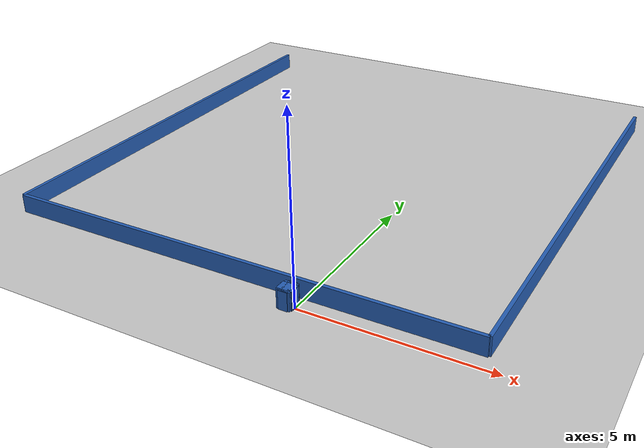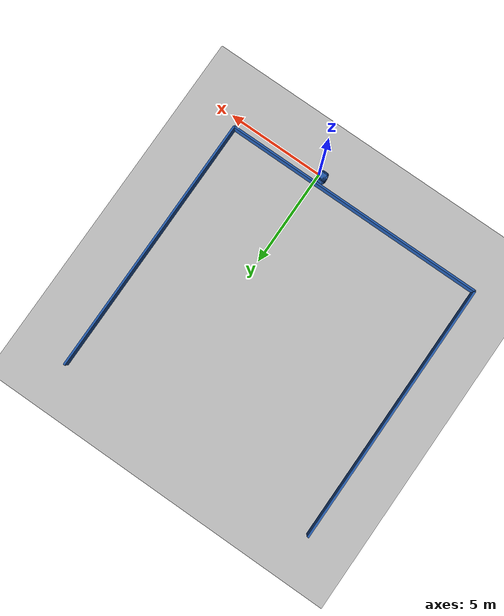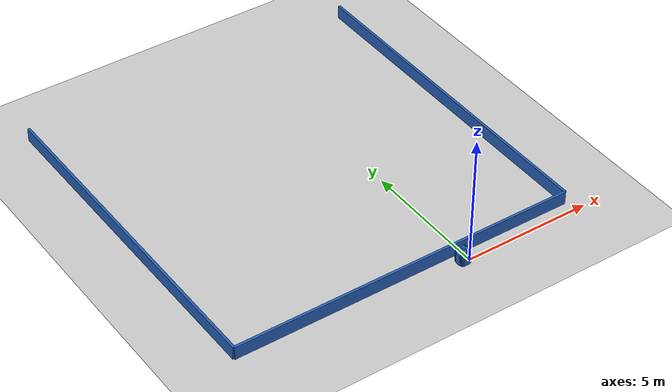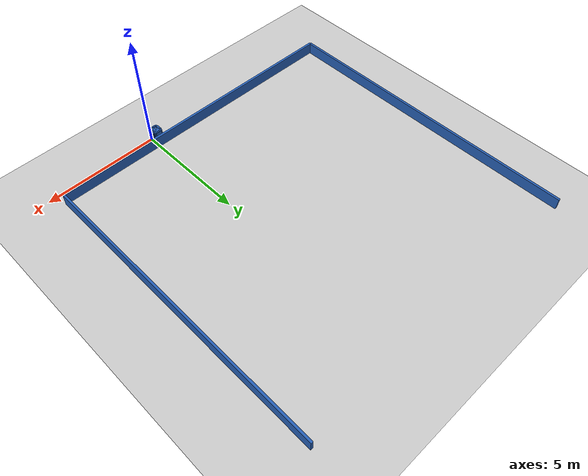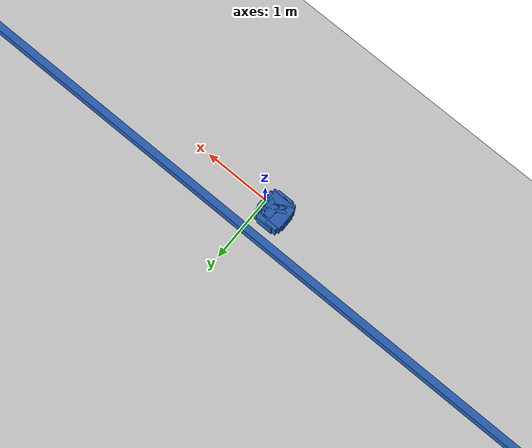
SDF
<?xml version="1.0" ?>
    <sdf version="1.5">
      <world name="default">
        <!-- A global light source -->
        <include>
          <uri>model://sun</uri>
        </include>
        <!-- A ground plane -->
        <include>
          <uri>model://ground_plane</uri>
        </include>

    <model name='libopen_space_final_T2B_77_83'>
      <static>1</static>
      <pose frame=''>-0.225000 0.075000 0.000000 0.000000 0.000000 0.000000</pose>
      <link name='link'>
        <inertial>
          <mass>1</mass>
          <inertia>
            <ixx>0.145833</ixx>
            <ixy>0</ixy>
            <ixz>0</ixz>
            <iyy>0.145833</iyy>
            <iyz>0</iyz>
            <izz>0.125</izz>
          </inertia>
        </inertial>
        <collision name='collision'>
          <geometry>
            <box>
              <size>0.41 0.30 1</size>
            </box>
          </geometry>
          <max_contacts>10</max_contacts>
          <surface>
            <contact>
              <ode/>
            </contact>
            <bounce/>
            <friction>
              <torsional>
                <ode/>
              </torsional>
              <ode/>
            </friction>
          </surface>
        </collision>
        <visual name='visual'>
          <geometry>
            <box>
              <size>0.41 0.30 1</size>
            </box>
          </geometry>
	    <material>
              <ambient>0.152000 0.379000 0.720000 1</ambient>
	      <diffuse>0.152000 0.379000 0.720000 1</diffuse>
          </material>
          <material>
            <script>
              <name>Gazebo/Grey</name>
              <uri>file://media/materials/scripts/gazebo.material</uri>
            </script>
          </material>
        </visual>
        <self_collide>0</self_collide>
        <kinematic>0</kinematic>
        <gravity>1</gravity>
      </link>
      <plugin name='libopen_space_final_T2B_77_83' filename='libopen_space_final_T2B_77_83.so'/>
    </model>

    <model name='libopen_space_final_T2B_83_61'>
      <static>1</static>
      <pose frame=''>-0.225000 0.075000 0.000000 0.000000 0.000000 0.000000</pose>
      <link name='link'>
        <inertial>
          <mass>1</mass>
          <inertia>
            <ixx>0.145833</ixx>
            <ixy>0</ixy>
            <ixz>0</ixz>
            <iyy>0.145833</iyy>
            <iyz>0</iyz>
            <izz>0.125</izz>
          </inertia>
        </inertial>
        <collision name='collision'>
          <geometry>
            <box>
              <size>0.36 0.43 1</size>
            </box>
          </geometry>
          <max_contacts>10</max_contacts>
          <surface>
            <contact>
              <ode/>
            </contact>
            <bounce/>
            <friction>
              <torsional>
                <ode/>
              </torsional>
              <ode/>
            </friction>
          </surface>
        </collision>
        <visual name='visual'>
          <geometry>
            <box>
              <size>0.36 0.43 1</size>
            </box>
          </geometry>
	    <material>
              <ambient>0.152000 0.379000 0.720000 1</ambient>
	      <diffuse>0.152000 0.379000 0.720000 1</diffuse>
          </material>
          <material>
            <script>
              <name>Gazebo/Grey</name>
              <uri>file://media/materials/scripts/gazebo.material</uri>
            </script>
          </material>
        </visual>
        <self_collide>0</self_collide>
        <kinematic>0</kinematic>
        <gravity>1</gravity>
      </link>
      <plugin name='libopen_space_final_T2B_83_61' filename='libopen_space_final_T2B_83_61.so'/>
    </model>

    <model name='libopen_space_final_T2B_80_26'>
      <static>1</static>
      <pose frame=''>-0.225000 0.075000 0.000000 0.000000 0.000000 0.000000</pose>
      <link name='link'>
        <inertial>
          <mass>1</mass>
          <inertia>
            <ixx>0.145833</ixx>
            <ixy>0</ixy>
            <ixz>0</ixz>
            <iyy>0.145833</iyy>
            <iyz>0</iyz>
            <izz>0.125</izz>
          </inertia>
        </inertial>
        <collision name='collision'>
          <geometry>
            <box>
              <size>0.44 0.21 1</size>
            </box>
          </geometry>
          <max_contacts>10</max_contacts>
          <surface>
            <contact>
              <ode/>
            </contact>
            <bounce/>
            <friction>
              <torsional>
                <ode/>
              </torsional>
              <ode/>
            </friction>
          </surface>
        </collision>
        <visual name='visual'>
          <geometry>
            <box>
              <size>0.44 0.21 1</size>
            </box>
          </geometry>
	    <material>
              <ambient>0.152000 0.379000 0.720000 1</ambient>
	      <diffuse>0.152000 0.379000 0.720000 1</diffuse>
          </material>
          <material>
            <script>
              <name>Gazebo/Grey</name>
              <uri>file://media/materials/scripts/gazebo.material</uri>
            </script>
          </material>
        </visual>
        <self_collide>0</self_collide>
        <kinematic>0</kinematic>
        <gravity>1</gravity>
      </link>
      <plugin name='libopen_space_final_T2B_80_26' filename='libopen_space_final_T2B_80_26.so'/>
    </model>

    <model name='libopen_space_final_T2B_77_65'>
      <static>1</static>
      <pose frame=''>-0.225000 0.075000 0.000000 0.000000 0.000000 0.000000</pose>
      <link name='link'>
        <inertial>
          <mass>1</mass>
          <inertia>
            <ixx>0.145833</ixx>
            <ixy>0</ixy>
            <ixz>0</ixz>
            <iyy>0.145833</iyy>
            <iyz>0</iyz>
            <izz>0.125</izz>
          </inertia>
        </inertial>
        <collision name='collision'>
          <geometry>
            <box>
              <size>0.41 0.33 1</size>
            </box>
          </geometry>
          <max_contacts>10</max_contacts>
          <surface>
            <contact>
              <ode/>
            </contact>
            <bounce/>
            <friction>
              <torsional>
                <ode/>
              </torsional>
              <ode/>
            </friction>
          </surface>
        </collision>
        <visual name='visual'>
          <geometry>
            <box>
              <size>0.41 0.33 1</size>
            </box>
          </geometry>
	    <material>
              <ambient>0.152000 0.379000 0.720000 1</ambient>
	      <diffuse>0.152000 0.379000 0.720000 1</diffuse>
          </material>
          <material>
            <script>
              <name>Gazebo/Grey</name>
              <uri>file://media/materials/scripts/gazebo.material</uri>
            </script>
          </material>
        </visual>
        <self_collide>0</self_collide>
        <kinematic>0</kinematic>
        <gravity>1</gravity>
      </link>
      <plugin name='libopen_space_final_T2B_77_65' filename='libopen_space_final_T2B_77_65.so'/>
    </model>

    <model name='libopen_space_final_T2B_112_54'>
      <static>1</static>
      <pose frame=''>-0.225000 0.075000 0.000000 0.000000 0.000000 0.000000</pose>
      <link name='link'>
        <inertial>
          <mass>1</mass>
          <inertia>
            <ixx>0.145833</ixx>
            <ixy>0</ixy>
            <ixz>0</ixz>
            <iyy>0.145833</iyy>
            <iyz>0</iyz>
            <izz>0.125</izz>
          </inertia>
        </inertial>
        <collision name='collision'>
          <geometry>
            <box>
              <size>0.18 0.18 1</size>
            </box>
          </geometry>
          <max_contacts>10</max_contacts>
          <surface>
            <contact>
              <ode/>
            </contact>
            <bounce/>
            <friction>
              <torsional>
                <ode/>
              </torsional>
              <ode/>
            </friction>
          </surface>
        </collision>
        <visual name='visual'>
          <geometry>
            <box>
              <size>0.18 0.18 1</size>
            </box>
          </geometry>
	    <material>
              <ambient>0.152000 0.379000 0.720000 1</ambient>
	      <diffuse>0.152000 0.379000 0.720000 1</diffuse>
          </material>
          <material>
            <script>
              <name>Gazebo/Grey</name>
              <uri>file://media/materials/scripts/gazebo.material</uri>
            </script>
          </material>
        </visual>
        <self_collide>0</self_collide>
        <kinematic>0</kinematic>
        <gravity>1</gravity>
      </link>
      <plugin name='libopen_space_final_T2B_112_54' filename='libopen_space_final_T2B_112_54.so'/>
    </model>

    <model name='libopen_space_final_T2B_105_38'>
      <static>1</static>
      <pose frame=''>-0.225000 0.075000 0.000000 0.000000 0.000000 0.000000</pose>
      <link name='link'>
        <inertial>
          <mass>1</mass>
          <inertia>
            <ixx>0.145833</ixx>
            <ixy>0</ixy>
            <ixz>0</ixz>
            <iyy>0.145833</iyy>
            <iyz>0</iyz>
            <izz>0.125</izz>
          </inertia>
        </inertial>
        <collision name='collision'>
          <geometry>
            <box>
              <size>0.18 0.24 1</size>
            </box>
          </geometry>
          <max_contacts>10</max_contacts>
          <surface>
            <contact>
              <ode/>
            </contact>
            <bounce/>
            <friction>
              <torsional>
                <ode/>
              </torsional>
              <ode/>
            </friction>
          </surface>
        </collision>
        <visual name='visual'>
          <geometry>
            <box>
              <size>0.18 0.24 1</size>
            </box>
          </geometry>
	    <material>
              <ambient>0.152000 0.379000 0.720000 1</ambient>
	      <diffuse>0.152000 0.379000 0.720000 1</diffuse>
          </material>
          <material>
            <script>
              <name>Gazebo/Grey</name>
              <uri>file://media/materials/scripts/gazebo.material</uri>
            </script>
          </material>
        </visual>
        <self_collide>0</self_collide>
        <kinematic>0</kinematic>
        <gravity>1</gravity>
      </link>
      <plugin name='libopen_space_final_T2B_105_38' filename='libopen_space_final_T2B_105_38.so'/>
    </model>

    <model name='libopen_space_final_T2B_105_94'>
      <static>1</static>
      <pose frame=''>-0.225000 0.075000 0.000000 0.000000 0.000000 0.000000</pose>
      <link name='link'>
        <inertial>
          <mass>1</mass>
          <inertia>
            <ixx>0.145833</ixx>
            <ixy>0</ixy>
            <ixz>0</ixz>
            <iyy>0.145833</iyy>
            <iyz>0</iyz>
            <izz>0.125</izz>
          </inertia>
        </inertial>
        <collision name='collision'>
          <geometry>
            <box>
              <size>0.11 0.40 1</size>
            </box>
          </geometry>
          <max_contacts>10</max_contacts>
          <surface>
            <contact>
              <ode/>
            </contact>
            <bounce/>
            <friction>
              <torsional>
                <ode/>
              </torsional>
              <ode/>
            </friction>
          </surface>
        </collision>
        <visual name='visual'>
          <geometry>
            <box>
              <size>0.11 0.40 1</size>
            </box>
          </geometry>
	    <material>
              <ambient>0.152000 0.379000 0.720000 1</ambient>
	      <diffuse>0.152000 0.379000 0.720000 1</diffuse>
          </material>
          <material>
            <script>
              <name>Gazebo/Grey</name>
              <uri>file://media/materials/scripts/gazebo.material</uri>
            </script>
          </material>
        </visual>
        <self_collide>0</self_collide>
        <kinematic>0</kinematic>
        <gravity>1</gravity>
      </link>
      <plugin name='libopen_space_final_T2B_105_94' filename='libopen_space_final_T2B_105_94.so'/>
    </model>

    <model name='libopen_space_final_T2B_90_7'>
      <static>1</static>
      <pose frame=''>-0.225000 0.075000 0.000000 0.000000 0.000000 0.000000</pose>
      <link name='link'>
        <inertial>
          <mass>1</mass>
          <inertia>
            <ixx>0.145833</ixx>
            <ixy>0</ixy>
            <ixz>0</ixz>
            <iyy>0.145833</iyy>
            <iyz>0</iyz>
            <izz>0.125</izz>
          </inertia>
        </inertial>
        <collision name='collision'>
          <geometry>
            <box>
              <size>0.29 0.30 1</size>
            </box>
          </geometry>
          <max_contacts>10</max_contacts>
          <surface>
            <contact>
              <ode/>
            </contact>
            <bounce/>
            <friction>
              <torsional>
                <ode/>
              </torsional>
              <ode/>
            </friction>
          </surface>
        </collision>
        <visual name='visual'>
          <geometry>
            <box>
              <size>0.29 0.30 1</size>
            </box>
          </geometry>
	    <material>
              <ambient>0.152000 0.379000 0.720000 1</ambient>
	      <diffuse>0.152000 0.379000 0.720000 1</diffuse>
          </material>
          <material>
            <script>
              <name>Gazebo/Grey</name>
              <uri>file://media/materials/scripts/gazebo.material</uri>
            </script>
          </material>
        </visual>
        <self_collide>0</self_collide>
        <kinematic>0</kinematic>
        <gravity>1</gravity>
      </link>
      <plugin name='libopen_space_final_T2B_90_7' filename='libopen_space_final_T2B_90_7.so'/>
    </model>

    <model name='libopen_space_final_T2B_79_14'>
      <static>1</static>
      <pose frame=''>-0.225000 0.075000 0.000000 0.000000 0.000000 0.000000</pose>
      <link name='link'>
        <inertial>
          <mass>1</mass>
          <inertia>
            <ixx>0.145833</ixx>
            <ixy>0</ixy>
            <ixz>0</ixz>
            <iyy>0.145833</iyy>
            <iyz>0</iyz>
            <izz>0.125</izz>
          </inertia>
        </inertial>
        <collision name='collision'>
          <geometry>
            <box>
              <size>0.26 0.29 1</size>
            </box>
          </geometry>
          <max_contacts>10</max_contacts>
          <surface>
            <contact>
              <ode/>
            </contact>
            <bounce/>
            <friction>
              <torsional>
                <ode/>
              </torsional>
              <ode/>
            </friction>
          </surface>
        </collision>
        <visual name='visual'>
          <geometry>
            <box>
              <size>0.26 0.29 1</size>
            </box>
          </geometry>
	    <material>
              <ambient>0.152000 0.379000 0.720000 1</ambient>
	      <diffuse>0.152000 0.379000 0.720000 1</diffuse>
          </material>
          <material>
            <script>
              <name>Gazebo/Grey</name>
              <uri>file://media/materials/scripts/gazebo.material</uri>
            </script>
          </material>
        </visual>
        <self_collide>0</self_collide>
        <kinematic>0</kinematic>
        <gravity>1</gravity>
      </link>
      <plugin name='libopen_space_final_T2B_79_14' filename='libopen_space_final_T2B_79_14.so'/>
    </model>

    <model name='libopen_space_final_T2B_139_84'>
      <static>1</static>
      <pose frame=''>-0.225000 0.075000 0.000000 0.000000 0.000000 0.000000</pose>
      <link name='link'>
        <inertial>
          <mass>1</mass>
          <inertia>
            <ixx>0.145833</ixx>
            <ixy>0</ixy>
            <ixz>0</ixz>
            <iyy>0.145833</iyy>
            <iyz>0</iyz>
            <izz>0.125</izz>
          </inertia>
        </inertial>
        <collision name='collision'>
          <geometry>
            <box>
              <size>0.15 0.28 1</size>
            </box>
          </geometry>
          <max_contacts>10</max_contacts>
          <surface>
            <contact>
              <ode/>
            </contact>
            <bounce/>
            <friction>
              <torsional>
                <ode/>
              </torsional>
              <ode/>
            </friction>
          </surface>
        </collision>
        <visual name='visual'>
          <geometry>
            <box>
              <size>0.15 0.28 1</size>
            </box>
          </geometry>
	    <material>
              <ambient>0.152000 0.379000 0.720000 1</ambient>
	      <diffuse>0.152000 0.379000 0.720000 1</diffuse>
          </material>
          <material>
            <script>
              <name>Gazebo/Grey</name>
              <uri>file://media/materials/scripts/gazebo.material</uri>
            </script>
          </material>
        </visual>
        <self_collide>0</self_collide>
        <kinematic>0</kinematic>
        <gravity>1</gravity>
      </link>
      <plugin name='libopen_space_final_T2B_139_84' filename='libopen_space_final_T2B_139_84.so'/>
    </model>

    <model name='libopen_space_final_T2B_94_79'>
      <static>1</static>
      <pose frame=''>-0.225000 0.075000 0.000000 0.000000 0.000000 0.000000</pose>
      <link name='link'>
        <inertial>
          <mass>1</mass>
          <inertia>
            <ixx>0.145833</ixx>
            <ixy>0</ixy>
            <ixz>0</ixz>
            <iyy>0.145833</iyy>
            <iyz>0</iyz>
            <izz>0.125</izz>
          </inertia>
        </inertial>
        <collision name='collision'>
          <geometry>
            <box>
              <size>0.43 0.12 1</size>
            </box>
          </geometry>
          <max_contacts>10</max_contacts>
          <surface>
            <contact>
              <ode/>
            </contact>
            <bounce/>
            <friction>
              <torsional>
                <ode/>
              </torsional>
              <ode/>
            </friction>
          </surface>
        </collision>
        <visual name='visual'>
          <geometry>
            <box>
              <size>0.43 0.12 1</size>
            </box>
          </geometry>
	    <material>
              <ambient>0.152000 0.379000 0.720000 1</ambient>
	      <diffuse>0.152000 0.379000 0.720000 1</diffuse>
          </material>
          <material>
            <script>
              <name>Gazebo/Grey</name>
              <uri>file://media/materials/scripts/gazebo.material</uri>
            </script>
          </material>
        </visual>
        <self_collide>0</self_collide>
        <kinematic>0</kinematic>
        <gravity>1</gravity>
      </link>
      <plugin name='libopen_space_final_T2B_94_79' filename='libopen_space_final_T2B_94_79.so'/>
    </model>

    <model name='libopen_space_final_T2B_85_62'>
      <static>1</static>
      <pose frame=''>-0.225000 0.075000 0.000000 0.000000 0.000000 0.000000</pose>
      <link name='link'>
        <inertial>
          <mass>1</mass>
          <inertia>
            <ixx>0.145833</ixx>
            <ixy>0</ixy>
            <ixz>0</ixz>
            <iyy>0.145833</iyy>
            <iyz>0</iyz>
            <izz>0.125</izz>
          </inertia>
        </inertial>
        <collision name='collision'>
          <geometry>
            <box>
              <size>0.30 0.14 1</size>
            </box>
          </geometry>
          <max_contacts>10</max_contacts>
          <surface>
            <contact>
              <ode/>
            </contact>
            <bounce/>
            <friction>
              <torsional>
                <ode/>
              </torsional>
              <ode/>
            </friction>
          </surface>
        </collision>
        <visual name='visual'>
          <geometry>
            <box>
              <size>0.30 0.14 1</size>
            </box>
          </geometry>
	    <material>
              <ambient>0.152000 0.379000 0.720000 1</ambient>
	      <diffuse>0.152000 0.379000 0.720000 1</diffuse>
          </material>
          <material>
            <script>
              <name>Gazebo/Grey</name>
              <uri>file://media/materials/scripts/gazebo.material</uri>
            </script>
          </material>
        </visual>
        <self_collide>0</self_collide>
        <kinematic>0</kinematic>
        <gravity>1</gravity>
      </link>
      <plugin name='libopen_space_final_T2B_85_62' filename='libopen_space_final_T2B_85_62.so'/>
    </model>

    <model name='libopen_space_final_T2B_116_74'>
      <static>1</static>
      <pose frame=''>-0.225000 0.075000 0.000000 0.000000 0.000000 0.000000</pose>
      <link name='link'>
        <inertial>
          <mass>1</mass>
          <inertia>
            <ixx>0.145833</ixx>
            <ixy>0</ixy>
            <ixz>0</ixz>
            <iyy>0.145833</iyy>
            <iyz>0</iyz>
            <izz>0.125</izz>
          </inertia>
        </inertial>
        <collision name='collision'>
          <geometry>
            <box>
              <size>0.31 0.38 1</size>
            </box>
          </geometry>
          <max_contacts>10</max_contacts>
          <surface>
            <contact>
              <ode/>
            </contact>
            <bounce/>
            <friction>
              <torsional>
                <ode/>
              </torsional>
              <ode/>
            </friction>
          </surface>
        </collision>
        <visual name='visual'>
          <geometry>
            <box>
              <size>0.31 0.38 1</size>
            </box>
          </geometry>
	    <material>
              <ambient>0.152000 0.379000 0.720000 1</ambient>
	      <diffuse>0.152000 0.379000 0.720000 1</diffuse>
          </material>
          <material>
            <script>
              <name>Gazebo/Grey</name>
              <uri>file://media/materials/scripts/gazebo.material</uri>
            </script>
          </material>
        </visual>
        <self_collide>0</self_collide>
        <kinematic>0</kinematic>
        <gravity>1</gravity>
      </link>
      <plugin name='libopen_space_final_T2B_116_74' filename='libopen_space_final_T2B_116_74.so'/>
    </model>

    <model name='libopen_space_final_T2B_118_43'>
      <static>1</static>
      <pose frame=''>-0.225000 0.075000 0.000000 0.000000 0.000000 0.000000</pose>
      <link name='link'>
        <inertial>
          <mass>1</mass>
          <inertia>
            <ixx>0.145833</ixx>
            <ixy>0</ixy>
            <ixz>0</ixz>
            <iyy>0.145833</iyy>
            <iyz>0</iyz>
            <izz>0.125</izz>
          </inertia>
        </inertial>
        <collision name='collision'>
          <geometry>
            <box>
              <size>0.25 0.47 1</size>
            </box>
          </geometry>
          <max_contacts>10</max_contacts>
          <surface>
            <contact>
              <ode/>
            </contact>
            <bounce/>
            <friction>
              <torsional>
                <ode/>
              </torsional>
              <ode/>
            </friction>
          </surface>
        </collision>
        <visual name='visual'>
          <geometry>
            <box>
              <size>0.25 0.47 1</size>
            </box>
          </geometry>
	    <material>
              <ambient>0.152000 0.379000 0.720000 1</ambient>
	      <diffuse>0.152000 0.379000 0.720000 1</diffuse>
          </material>
          <material>
            <script>
              <name>Gazebo/Grey</name>
              <uri>file://media/materials/scripts/gazebo.material</uri>
            </script>
          </material>
        </visual>
        <self_collide>0</self_collide>
        <kinematic>0</kinematic>
        <gravity>1</gravity>
      </link>
      <plugin name='libopen_space_final_T2B_118_43' filename='libopen_space_final_T2B_118_43.so'/>
    </model>

        <model name='bottom_wall'>
          <static>1</static>
          <pose frame=''>-2.25 0.5 0.000000 0.000000 0.000000 1.57079632</pose>
          <link name='link'>
            <inertial>
            <mass>1</mass>
            <inertia>
              <ixx>0.145833</ixx>
              <ixy>0</ixy>
              <ixz>0</ixz>
              <iyy>0.145833</iyy>
              <iyz>0</iyz>
              <izz>0.125</izz>
            </inertia>
            </inertial>
            <collision name='collision'>
            <geometry>
              <box>
              <size>0.1 13.5 1</size>
              </box>
            </geometry>
            <max_contacts>10</max_contacts>
            <surface>
              <contact>
              <ode/>
              </contact>
              <bounce/>
              <friction>
              <torsional>
                <ode/>
              </torsional>
              <ode/>
              </friction>
            </surface>
            </collision>
            <visual name='visual'>
            <geometry>
              <box>
              <size>0.1 13.5 1</size>
              </box>
            </geometry>
            <material>
              <ambient>0.152000 0.379000 0.720000 1</ambient>
            <diffuse>0.152000 0.379000 0.720000 1</diffuse>
            </material>
            <material>
              <script>
              <name>Gazebo/Grey</name>
              <uri>file://media/materials/scripts/gazebo.material</uri>
              </script>
            </material>
            </visual>
            <self_collide>0</self_collide>
            <kinematic>0</kinematic>
            <gravity>1</gravity>
          </link>
        </model>

        <model name='left_wall'>
          <static>1</static>
          <pose frame=''>-9 7.25 0.000000 0.000000 0.000000 0.000000</pose>
          <link name='link'>
            <inertial>
            <mass>1</mass>
            <inertia>
              <ixx>0.145833</ixx>
              <ixy>0</ixy>
              <ixz>0</ixz>
              <iyy>0.145833</iyy>
              <iyz>0</iyz>
              <izz>0.125</izz>
            </inertia>
            </inertial>
            <collision name='collision'>
            <geometry>
              <box>
              <size>0.1 13.5 1</size>
              </box>
            </geometry>
            <max_contacts>10</max_contacts>
            <surface>
              <contact>
              <ode/>
              </contact>
              <bounce/>
              <friction>
              <torsional>
                <ode/>
              </torsional>
              <ode/>
              </friction>
            </surface>
            </collision>
            <visual name='visual'>
            <geometry>
              <box>
              <size>0.1 13.5 1</size>
              </box>
            </geometry>
            <material>
              <ambient>0.152000 0.379000 0.720000 1</ambient>
            <diffuse>0.152000 0.379000 0.720000 1</diffuse>
            </material>
            <material>
              <script>
              <name>Gazebo/Grey</name>
              <uri>file://media/materials/scripts/gazebo.material</uri>
              </script>
            </material>
            </visual>
            <self_collide>0</self_collide>
            <kinematic>0</kinematic>
            <gravity>1</gravity>
          </link>
        </model>

        <model name='right_wall'>
          <static>1</static>
          <pose frame=''>4.5 7.25 0.000000 0.000000 0.000000 0.000000</pose>
          <link name='link'>
            <inertial>
            <mass>1</mass>
            <inertia>
              <ixx>0.145833</ixx>
              <ixy>0</ixy>
              <ixz>0</ixz>
              <iyy>0.145833</iyy>
              <iyz>0</iyz>
              <izz>0.125</izz>
            </inertia>
            </inertial>
            <collision name='collision'>
            <geometry>
              <box>
              <size>0.1 13.5 1</size>
              </box>
            </geometry>
            <max_contacts>10</max_contacts>
            <surface>
              <contact>
              <ode/>
              </contact>
              <bounce/>
              <friction>
              <torsional>
                <ode/>
              </torsional>
              <ode/>
              </friction>
            </surface>
            </collision>
            <visual name='visual'>
            <geometry>
              <box>
              <size>0.1 13.5 1</size>
              </box>
            </geometry>
            <material>
              <ambient>0.152000 0.379000 0.720000 1</ambient>
            <diffuse>0.152000 0.379000 0.720000 1</diffuse>
            </material>
            <material>
              <script>
              <name>Gazebo/Grey</name>
              <uri>file://media/materials/scripts/gazebo.material</uri>
              </script>
            </material>
            </visual>
            <self_collide>0</self_collide>
            <kinematic>0</kinematic>
            <gravity>1</gravity>
          </link>
        </model>

      </world>
    </sdf>"
